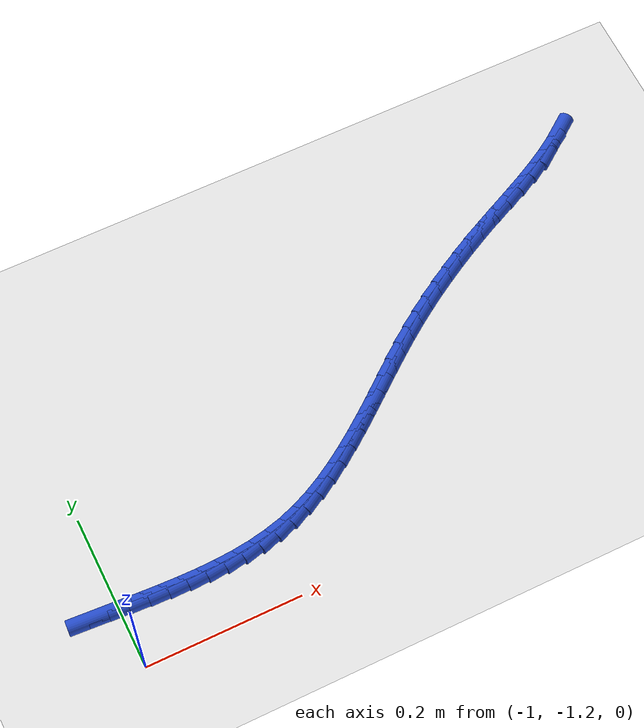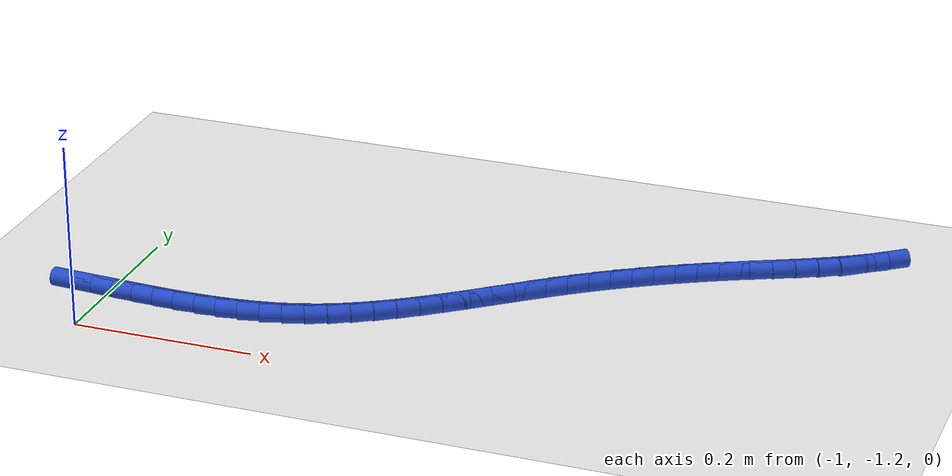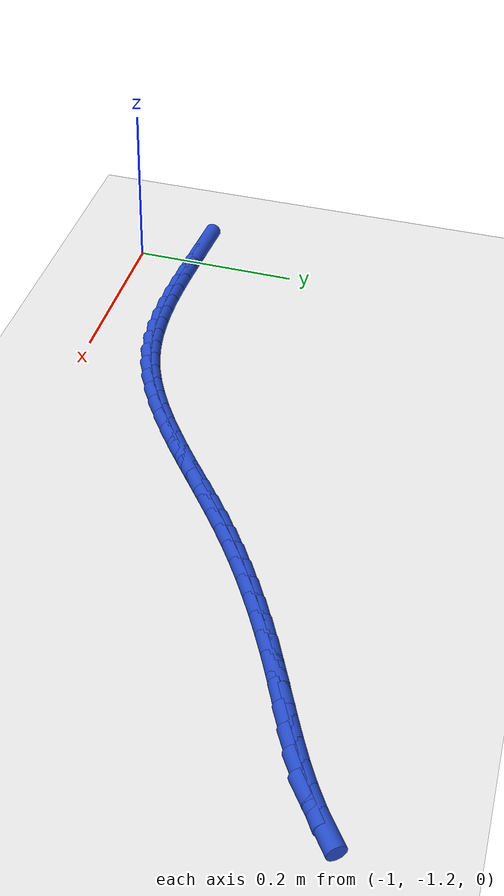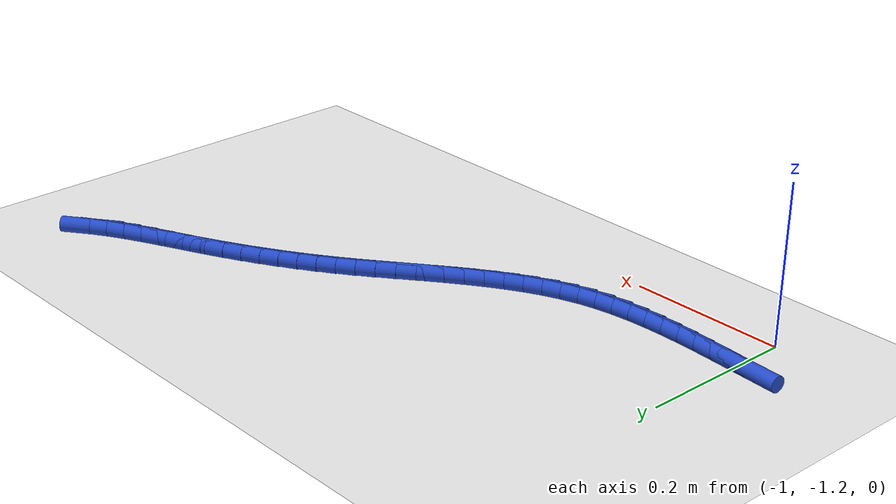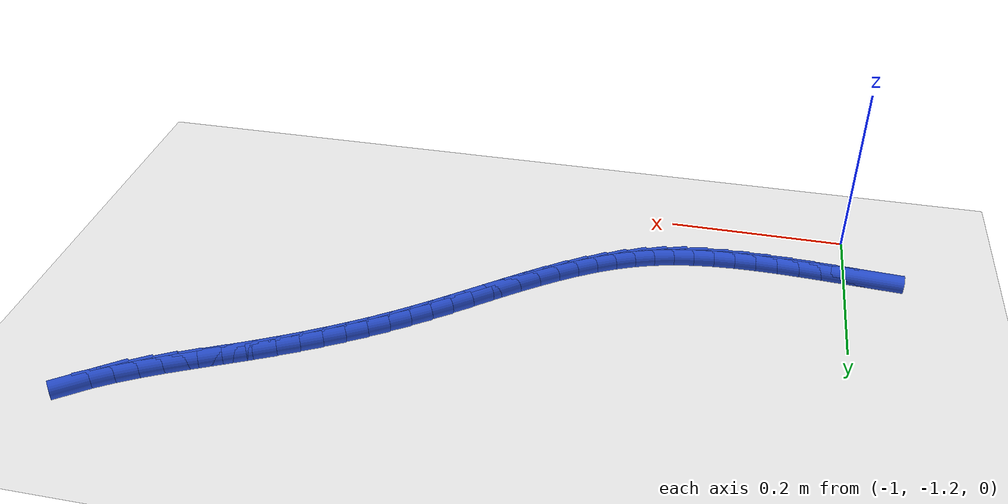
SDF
<sdf version="1.6">
 <world name="default">
  <model name="ground_plane">
   <static>1</static>
   <link name="link">
    <collision name="collision">
     <geometry><plane><normal>0 0 1</normal><size>100 100</size></plane></geometry>
     <surface><friction><ode><mu>100</mu><mu2>50</mu2></ode></friction></surface>
    </collision>
    <visual name="visual">
     <cast_shadows>0</cast_shadows>
     <geometry><plane><normal>0 0 1</normal><size>100 100</size></plane></geometry>
     <material>
      <script><uri>file://media/materials/scripts/gazebo.material</uri><name>Gazebo/WhiteGlow</name></script>
     </material>
    </visual>
   </link>
  </model>
  <model name="line">
   <link name="link_219">
    <pose>-1.0237318942513942 -1.1236718890567596 0.01 0 1.57 -0.06393685774177467</pose>
    <collision name="collision">
     <geometry><cylinder><radius>0.01</radius><length>0.08</length></cylinder></geometry>
    </collision>
    <visual name="visual">
     <material>
      <script><name>Gazebo/Blue</name><uri>file://media/materials/scripts/gazebo.material</uri></script>
     </material>
     <geometry><cylinder><radius>0.01</radius><length>0.08</length></cylinder></geometry>
    </visual>
   </link>
   <link name="link_220">
    <pose>-0.9990096702642071 -1.1252547077759474 0.01 0 1.57 -0.06330193965285973</pose>
    <collision name="collision">
     <geometry><cylinder><radius>0.01</radius><length>0.08</length></cylinder></geometry>
    </collision>
    <visual name="visual">
     <material>
      <script><name>Gazebo/Blue</name><uri>file://media/materials/scripts/gazebo.material</uri></script>
     </material>
     <geometry><cylinder><radius>0.01</radius><length>0.08</length></cylinder></geometry>
    </visual>
   </link>
   <link name="link_221">
    <pose>-0.9742714626267373 -1.1268227793544718 0.01 0 1.57 -0.054804094722480705</pose>
    <collision name="collision">
     <geometry><cylinder><radius>0.01</radius><length>0.08</length></cylinder></geometry>
    </collision>
    <visual name="visual">
     <material>
      <script><name>Gazebo/Blue</name><uri>file://media/materials/scripts/gazebo.material</uri></script>
     </material>
     <geometry><cylinder><radius>0.01</radius><length>0.08</length></cylinder></geometry>
    </visual>
   </link>
   <link name="link_222">
    <pose>-0.9495826754449557 -1.1281771822353144 0.01 0 1.57 -0.03830688270556919</pose>
    <collision name="collision">
     <geometry><cylinder><radius>0.01</radius><length>0.08</length></cylinder></geometry>
    </collision>
    <visual name="visual">
     <material>
      <script><name>Gazebo/Blue</name><uri>file://media/materials/scripts/gazebo.material</uri></script>
     </material>
     <geometry><cylinder><radius>0.01</radius><length>0.08</length></cylinder></geometry>
    </visual>
   </link>
   <link name="link_223">
    <pose>-0.9250087128248333 -1.1291189948614564 0.01 0 1.57 -0.013539568450171376</pose>
    <collision name="collision">
     <geometry><cylinder><radius>0.01</radius><length>0.08</length></cylinder></geometry>
    </collision>
    <visual name="visual">
     <material>
      <script><name>Gazebo/Blue</name><uri>file://media/materials/scripts/gazebo.material</uri></script>
     </material>
     <geometry><cylinder><radius>0.01</radius><length>0.08</length></cylinder></geometry>
    </visual>
   </link>
   <link name="link_224">
    <pose>-0.900614978872342 -1.1294492956758804 0.01 0 1.57 0.0198802090479934</pose>
    <collision name="collision">
     <geometry><cylinder><radius>0.01</radius><length>0.08</length></cylinder></geometry>
    </collision>
    <visual name="visual">
     <material>
      <script><name>Gazebo/Blue</name><uri>file://media/materials/scripts/gazebo.material</uri></script>
     </material>
     <geometry><cylinder><radius>0.01</radius><length>0.08</length></cylinder></geometry>
    </visual>
   </link>
   <link name="link_225">
    <pose>-0.8764668776934531 -1.1289691631215686 0.01 0 1.57 0.062405060038639784</pose>
    <collision name="collision">
     <geometry><cylinder><radius>0.01</radius><length>0.08</length></cylinder></geometry>
    </collision>
    <visual name="visual">
     <material>
      <script><name>Gazebo/Blue</name><uri>file://media/materials/scripts/gazebo.material</uri></script>
     </material>
     <geometry><cylinder><radius>0.01</radius><length>0.08</length></cylinder></geometry>
    </visual>
   </link>
   <link name="link_226">
    <pose>-0.8526298133941378 -1.1274796756415024 0.01 0 1.57 0.114488288413355</pose>
    <collision name="collision">
     <geometry><cylinder><radius>0.01</radius><length>0.08</length></cylinder></geometry>
    </collision>
    <visual name="visual">
     <material>
      <script><name>Gazebo/Blue</name><uri>file://media/materials/scripts/gazebo.material</uri></script>
     </material>
     <geometry><cylinder><radius>0.01</radius><length>0.08</length></cylinder></geometry>
    </visual>
   </link>
   <link name="link_227">
    <pose>-0.8291691900803676 -1.1247819116786646 0.01 0 1.57 0.17647585870891594</pose>
    <collision name="collision">
     <geometry><cylinder><radius>0.01</radius><length>0.08</length></cylinder></geometry>
    </collision>
    <visual name="visual">
     <material>
      <script><name>Gazebo/Blue</name><uri>file://media/materials/scripts/gazebo.material</uri></script>
     </material>
     <geometry><cylinder><radius>0.01</radius><length>0.08</length></cylinder></geometry>
    </visual>
   </link>
   <link name="link_228">
    <pose>-0.8061504118581135 -1.120676949676036 0.01 0 1.57 0.24845407845936274</pose>
    <collision name="collision">
     <geometry><cylinder><radius>0.01</radius><length>0.08</length></cylinder></geometry>
    </collision>
    <visual name="visual">
     <material>
      <script><name>Gazebo/Blue</name><uri>file://media/materials/scripts/gazebo.material</uri></script>
     </material>
     <geometry><cylinder><radius>0.01</radius><length>0.08</length></cylinder></geometry>
    </visual>
   </link>
   <link name="link_229">
    <pose>-0.7836388828333476 -1.1149658680766 0.01 0 1.57 0.3291501440110474</pose>
    <collision name="collision">
     <geometry><cylinder><radius>0.01</radius><length>0.08</length></cylinder></geometry>
    </collision>
    <visual name="visual">
     <material>
      <script><name>Gazebo/Blue</name><uri>file://media/materials/scripts/gazebo.material</uri></script>
     </material>
     <geometry><cylinder><radius>0.01</radius><length>0.08</length></cylinder></geometry>
    </visual>
   </link>
   <link name="link_230">
    <pose>-0.7616936048466183 -1.1074698970254884 0.01 0 1.57 0.4070252925419807</pose>
    <collision name="collision">
     <geometry><cylinder><radius>0.01</radius><length>0.08</length></cylinder></geometry>
    </collision>
    <visual name="visual">
     <material>
      <script><name>Gazebo/Blue</name><uri>file://media/materials/scripts/gazebo.material</uri></script>
     </material>
     <geometry><cylinder><radius>0.01</radius><length>0.08</length></cylinder></geometry>
    </visual>
   </link>
   <link name="link_231">
    <pose>-0.7402985281278822 -1.0982464983144176 0.01 0 1.57 0.4744995030906534</pose>
    <collision name="collision">
     <geometry><cylinder><radius>0.01</radius><length>0.08</length></cylinder></geometry>
    </collision>
    <visual name="visual">
     <material>
      <script><name>Gazebo/Blue</name><uri>file://media/materials/scripts/gazebo.material</uri></script>
     </material>
     <geometry><cylinder><radius>0.01</radius><length>0.08</length></cylinder></geometry>
    </visual>
   </link>
   <link name="link_232">
    <pose>-0.7193888839451489 -1.0875064810185213 0.01 0 1.57 0.5313759673781274</pose>
    <collision name="collision">
     <geometry><cylinder><radius>0.01</radius><length>0.08</length></cylinder></geometry>
    </collision>
    <visual name="visual">
     <material>
      <script><name>Gazebo/Blue</name><uri>file://media/materials/scripts/gazebo.material</uri></script>
     </material>
     <geometry><cylinder><radius>0.01</radius><length>0.08</length></cylinder></geometry>
    </visual>
   </link>
   <link name="link_233">
    <pose>-0.6988990780638072 -1.0754632525561556 0.01 0 1.57 0.5779417992380371</pose>
    <collision name="collision">
     <geometry><cylinder><radius>0.01</radius><length>0.08</length></cylinder></geometry>
    </collision>
    <visual name="visual">
     <material>
      <script><name>Gazebo/Blue</name><uri>file://media/materials/scripts/gazebo.material</uri></script>
     </material>
     <geometry><cylinder><radius>0.01</radius><length>0.08</length></cylinder></geometry>
    </visual>
   </link>
   <link name="link_234">
    <pose>-0.6787635162492436 -1.0623302203456744 0.01 0 1.57 0.6146576926765549</pose>
    <collision name="collision">
     <geometry><cylinder><radius>0.01</radius><length>0.08</length></cylinder></geometry>
    </collision>
    <visual name="visual">
     <material>
      <script><name>Gazebo/Blue</name><uri>file://media/materials/scripts/gazebo.material</uri></script>
     </material>
     <geometry><cylinder><radius>0.01</radius><length>0.08</length></cylinder></geometry>
    </visual>
   </link>
   <link name="link_235">
    <pose>-0.6589166042668473 -1.0483207918054327 0.01 0 1.57 0.6420163709082071</pose>
    <collision name="collision">
     <geometry><cylinder><radius>0.01</radius><length>0.08</length></cylinder></geometry>
    </collision>
    <visual name="visual">
     <material>
      <script><name>Gazebo/Blue</name><uri>file://media/materials/scripts/gazebo.material</uri></script>
     </material>
     <geometry><cylinder><radius>0.01</radius><length>0.08</length></cylinder></geometry>
    </visual>
   </link>
   <link name="link_236">
    <pose>-0.6392927478820055 -1.033648374353785 0.01 0 1.57 0.6604497736791268</pose>
    <collision name="collision">
     <geometry><cylinder><radius>0.01</radius><length>0.08</length></cylinder></geometry>
    </collision>
    <visual name="visual">
     <material>
      <script><name>Gazebo/Blue</name><uri>file://media/materials/scripts/gazebo.material</uri></script>
     </material>
     <geometry><cylinder><radius>0.01</radius><length>0.08</length></cylinder></geometry>
    </visual>
   </link>
   <link name="link_237">
    <pose>-0.6198263528601071 -1.0185263754090867 0.01 0 1.57 0.6702733619783957</pose>
    <collision name="collision">
     <geometry><cylinder><radius>0.01</radius><length>0.08</length></cylinder></geometry>
    </collision>
    <visual name="visual">
     <material>
      <script><name>Gazebo/Blue</name><uri>file://media/materials/scripts/gazebo.material</uri></script>
     </material>
     <geometry><cylinder><radius>0.01</radius><length>0.08</length></cylinder></geometry>
    </visual>
   </link>
   <link name="link_238">
    <pose>-0.6004518249665397 -1.0031682023896922 0.01 0 1.57 0.6716554844968887</pose>
    <collision name="collision">
     <geometry><cylinder><radius>0.01</radius><length>0.08</length></cylinder></geometry>
    </collision>
    <visual name="visual">
     <material>
      <script><name>Gazebo/Blue</name><uri>file://media/materials/scripts/gazebo.material</uri></script>
     </material>
     <geometry><cylinder><radius>0.01</radius><length>0.08</length></cylinder></geometry>
    </visual>
   </link>
   <link name="link_239">
    <pose>-0.5811035699666915 -0.9877872627139563 0.01 0 1.57 0.6646029246408386</pose>
    <collision name="collision">
     <geometry><cylinder><radius>0.01</radius><length>0.08</length></cylinder></geometry>
    </collision>
    <visual name="visual">
     <material>
      <script><name>Gazebo/Blue</name><uri>file://media/materials/scripts/gazebo.material</uri></script>
     </material>
     <geometry><cylinder><radius>0.01</radius><length>0.08</length></cylinder></geometry>
    </visual>
   </link>
   <link name="link_240">
    <pose>-0.5617159936259504 -0.972596963800234 0.01 0 1.57 0.6489578859089062</pose>
    <collision name="collision">
     <geometry><cylinder><radius>0.01</radius><length>0.08</length></cylinder></geometry>
    </collision>
    <visual name="visual">
     <material>
      <script><name>Gazebo/Blue</name><uri>file://media/materials/scripts/gazebo.material</uri></script>
     </material>
     <geometry><cylinder><radius>0.01</radius><length>0.08</length></cylinder></geometry>
    </visual>
   </link>
   <link name="link_241">
    <pose>-0.5422235017097043 -0.9578107130668798 0.01 0 1.57 0.6249401954467275</pose>
    <collision name="collision">
     <geometry><cylinder><radius>0.01</radius><length>0.08</length></cylinder></geometry>
    </collision>
    <visual name="visual">
     <material>
      <script><name>Gazebo/Blue</name><uri>file://media/materials/scripts/gazebo.material</uri></script>
     </material>
     <geometry><cylinder><radius>0.01</radius><length>0.08</length></cylinder></geometry>
    </visual>
   </link>
   <link name="link_242">
    <pose>-0.5225621912326625 -0.9436271712963306 0.01 0 1.57 0.5980688153708045</pose>
    <collision name="collision">
     <geometry><cylinder><radius>0.01</radius><length>0.08</length></cylinder></geometry>
    </collision>
    <visual name="visual">
     <material>
      <script><name>Gazebo/Blue</name><uri>file://media/materials/scripts/gazebo.material</uri></script>
     </material>
     <geometry><cylinder><radius>0.01</radius><length>0.08</length></cylinder></geometry>
    </visual>
   </link>
   <link name="link_243">
    <pose>-0.5026864282153125 -0.9300857049709518 0.01 0 1.57 0.5720406916537211</pose>
    <collision name="collision">
     <geometry><cylinder><radius>0.01</radius><length>0.08</length></cylinder></geometry>
    </collision>
    <visual name="visual">
     <material>
      <script><name>Gazebo/Blue</name><uri>file://media/materials/scripts/gazebo.material</uri></script>
     </material>
     <geometry><cylinder><radius>0.01</radius><length>0.08</length></cylinder></geometry>
    </visual>
   </link>
   <link name="link_244">
    <pose>-0.48256173625025583 -0.9171283935252024 0.01 0 1.57 0.5471550960472834</pose>
    <collision name="collision">
     <geometry><cylinder><radius>0.01</radius><length>0.08</length></cylinder></geometry>
    </collision>
    <visual name="visual">
     <material>
      <script><name>Gazebo/Blue</name><uri>file://media/materials/scripts/gazebo.material</uri></script>
     </material>
     <geometry><cylinder><radius>0.01</radius><length>0.08</length></cylinder></geometry>
    </visual>
   </link>
   <link name="link_245">
    <pose>-0.46215379857276423 -0.9046959244093461 0.01 0 1.57 0.5236373591750242</pose>
    <collision name="collision">
     <geometry><cylinder><radius>0.01</radius><length>0.08</length></cylinder></geometry>
    </collision>
    <visual name="visual">
     <material>
      <script><name>Gazebo/Blue</name><uri>file://media/materials/scripts/gazebo.material</uri></script>
     </material>
     <geometry><cylinder><radius>0.01</radius><length>0.08</length></cylinder></geometry>
    </visual>
   </link>
   <link name="link_246">
    <pose>-0.4414282984181089 -0.8927289850736466 0.01 0 1.57 0.5016828082518257</pose>
    <collision name="collision">
     <geometry><cylinder><radius>0.01</radius><length>0.08</length></cylinder></geometry>
    </collision>
    <visual name="visual">
     <material>
      <script><name>Gazebo/Blue</name><uri>file://media/materials/scripts/gazebo.material</uri></script>
     </material>
     <geometry><cylinder><radius>0.01</radius><length>0.08</length></cylinder></geometry>
    </visual>
   </link>
   <link name="link_247">
    <pose>-0.42035091902156113 -0.8811682629683679 0.01 0 1.57 0.48145219590330784</pose>
    <collision name="collision">
     <geometry><cylinder><radius>0.01</radius><length>0.08</length></cylinder></geometry>
    </collision>
    <visual name="visual">
     <material>
      <script><name>Gazebo/Blue</name><uri>file://media/materials/scripts/gazebo.material</uri></script>
     </material>
     <geometry><cylinder><radius>0.01</radius><length>0.08</length></cylinder></geometry>
    </visual>
   </link>
   <link name="link_248">
    <pose>-0.39888734361839295 -0.8699544455437741 0.01 0 1.57 0.4630691661849502</pose>
    <collision name="collision">
     <geometry><cylinder><radius>0.01</radius><length>0.08</length></cylinder></geometry>
    </collision>
    <visual name="visual">
     <material>
      <script><name>Gazebo/Blue</name><uri>file://media/materials/scripts/gazebo.material</uri></script>
     </material>
     <geometry><cylinder><radius>0.01</radius><length>0.08</length></cylinder></geometry>
    </visual>
   </link>
   <link name="link_249">
    <pose>-0.3770032554438745 -0.859028220250128 0.01 0 1.57 0.4482195671314863</pose>
    <collision name="collision">
     <geometry><cylinder><radius>0.01</radius><length>0.08</length></cylinder></geometry>
    </collision>
    <visual name="visual">
     <material>
      <script><name>Gazebo/Blue</name><uri>file://media/materials/scripts/gazebo.material</uri></script>
     </material>
     <geometry><cylinder><radius>0.01</radius><length>0.08</length></cylinder></geometry>
    </visual>
   </link>
   <link name="link_250">
    <pose>-0.3547098132709626 -0.8483081718540599 0.01 0 1.57 0.44468585945279</pose>
    <collision name="collision">
     <geometry><cylinder><radius>0.01</radius><length>0.08</length></cylinder></geometry>
    </collision>
    <visual name="visual">
     <material>
      <script><name>Gazebo/Blue</name><uri>file://media/materials/scripts/gazebo.material</uri></script>
     </material>
     <geometry><cylinder><radius>0.01</radius><length>0.08</length></cylinder></geometry>
    </visual>
   </link>
   <link name="link_251">
    <pose>-0.3322443231784387 -0.8376029697125118 0.01 0 1.57 0.454678290461562</pose>
    <collision name="collision">
     <geometry><cylinder><radius>0.01</radius><length>0.08</length></cylinder></geometry>
    </collision>
    <visual name="visual">
     <material>
      <script><name>Gazebo/Blue</name><uri>file://media/materials/scripts/gazebo.material</uri></script>
     </material>
     <geometry><cylinder><radius>0.01</radius><length>0.08</length></cylinder></geometry>
    </visual>
   </link>
   <link name="link_252">
    <pose>-0.30991425477298895 -0.8266871812819554 0.01 0 1.57 0.47845765081186015</pose>
    <collision name="collision">
     <geometry><cylinder><radius>0.01</radius><length>0.08</length></cylinder></geometry>
    </collision>
    <visual name="visual">
     <material>
      <script><name>Gazebo/Blue</name><uri>file://media/materials/scripts/gazebo.material</uri></script>
     </material>
     <geometry><cylinder><radius>0.01</radius><length>0.08</length></cylinder></geometry>
    </visual>
   </link>
   <link name="link_253">
    <pose>-0.2880270992395984 -0.8153353635310642 0.01 0 1.57 0.5168300415905291</pose>
    <collision name="collision">
     <geometry><cylinder><radius>0.01</radius><length>0.08</length></cylinder></geometry>
    </collision>
    <visual name="visual">
     <material>
      <script><name>Gazebo/Blue</name><uri>file://media/materials/scripts/gazebo.material</uri></script>
     </material>
     <geometry><cylinder><radius>0.01</radius><length>0.08</length></cylinder></geometry>
    </visual>
   </link>
   <link name="link_254">
    <pose>-0.2668903477632518 -0.8033220734285109 0.01 0 1.57 0.5710685278222708</pose>
    <collision name="collision">
     <geometry><cylinder><radius>0.01</radius><length>0.08</length></cylinder></geometry>
    </collision>
    <visual name="visual">
     <material>
      <script><name>Gazebo/Blue</name><uri>file://media/materials/scripts/gazebo.material</uri></script>
     </material>
     <geometry><cylinder><radius>0.01</radius><length>0.08</length></cylinder></geometry>
    </visual>
   </link>
   <link name="link_255">
    <pose>-0.2468114915289342 -0.7904218679429685 0.01 0 1.57 0.6427298486939802</pose>
    <collision name="collision">
     <geometry><cylinder><radius>0.01</radius><length>0.08</length></cylinder></geometry>
    </collision>
    <visual name="visual">
     <material>
      <script><name>Gazebo/Blue</name><uri>file://media/materials/scripts/gazebo.material</uri></script>
     </material>
     <geometry><cylinder><radius>0.01</radius><length>0.08</length></cylinder></geometry>
    </visual>
   </link>
  </model>
 </world>
</sdf>
